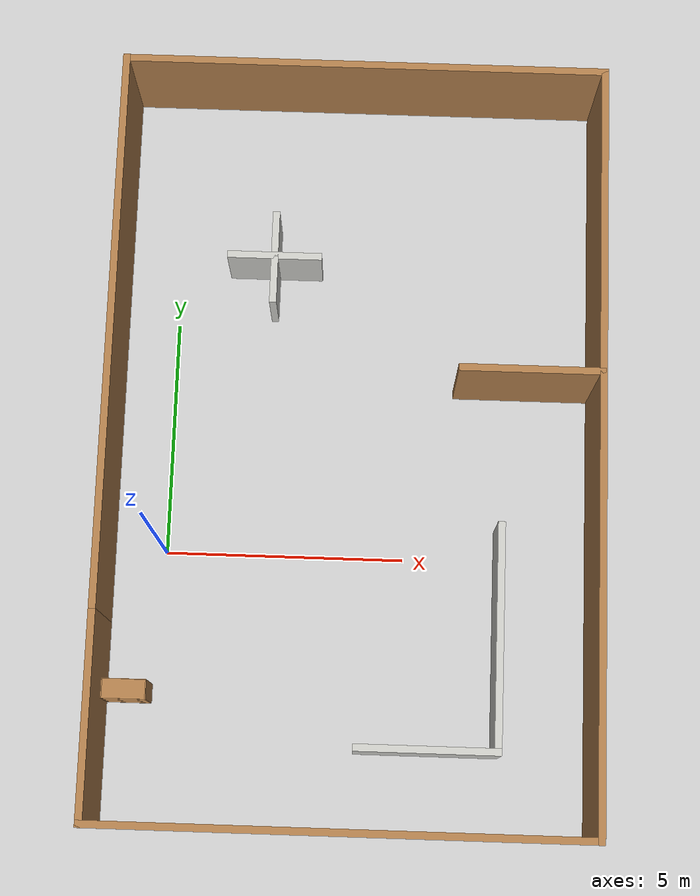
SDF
<sdf version="1.6">
 <world name="default">
  <light name="sun" type="directional">
   <pose>0 0 10 0 -0 0</pose>
   <diffuse>0.8 0.8 0.8 1</diffuse>
   <specular>0.1 0.1 0.1 1</specular>
   <attenuation>
    <range>1000</range>
    <constant>0.9</constant>
    <linear>0.01</linear>
    <quadratic>0.001</quadratic>
   </attenuation>
   <direction>-0.5 0.5 -1</direction>
  </light>
  <model name="ground_plane">
   <static>1</static>
   <link name="link">
    <collision name="collision">
     <geometry><plane><normal>0 0 1</normal><size>100 100</size></plane></geometry>
     <surface><friction><ode><mu>100</mu><mu2>50</mu2></ode></friction></surface>
    </collision>
    <visual name="visual">
     <cast_shadows>0</cast_shadows>
     <geometry><plane><normal>0 0 1</normal><size>100 100</size></plane></geometry>
     <material>
      <script><uri>file://media/materials/scripts/gazebo.material</uri><name>Gazebo/Grey</name></script>
     </material>
    </visual>
   </link>
  </model>
  <gravity>0 0 -9.8</gravity>
  <magnetic_field>6e-06 2.3e-05 -4.2e-05</magnetic_field>
  <atmosphere type="adiabatic"/>
  <physics name="default_physics" default="0" type="ode">
   <max_step_size>0.001</max_step_size>
   <real_time_factor>1</real_time_factor>
   <real_time_update_rate>1000</real_time_update_rate>
  </physics>
  <scene><ambient>0.4 0.4 0.4 1</ambient><background>0.7 0.7 0.7 1</background><shadows>1</shadows></scene>
  <spherical_coordinates>
   <surface_model>EARTH_WGS84</surface_model>
   <latitude_deg>0</latitude_deg>
   <longitude_deg>0</longitude_deg>
   <elevation>0</elevation>
   <heading_deg>0</heading_deg>
  </spherical_coordinates>
  <model name="irl_test5">
   <pose>3.88601 2.23861 0 0 -0 0</pose>
   <link name="Wall_12">
    <collision name="Wall_12_Collision">
     <geometry><box><size>11.75 0.15 2.5</size></box></geometry>
     <pose>0 0 1.25 0 -0 0</pose>
    </collision>
    <visual name="Wall_12_Visual">
     <pose>0 0 1.25 0 -0 0</pose>
     <geometry><box><size>11.75 0.15 2.5</size></box></geometry>
     <material>
      <script><uri>file://media/materials/scripts/gazebo.material</uri><name>Gazebo/Wood</name></script>
      <ambient>1 1 1 1</ambient>
     </material>
    </visual>
    <pose>-5.05 2.125 0 0 -0 1.5708</pose>
   </link>
   <link name="Wall_13">
    <collision name="Wall_13_Collision">
     <geometry><box><size>10.25 0.15 2.5</size></box></geometry>
     <pose>0 0 1.25 0 -0 0</pose>
    </collision>
    <visual name="Wall_13_Visual">
     <pose>0 0 1.25 0 -0 0</pose>
     <geometry><box><size>10.25 0.15 2.5</size></box></geometry>
     <material>
      <script><uri>file://media/materials/scripts/gazebo.material</uri><name>Gazebo/Wood</name></script>
      <ambient>1 1 1 1</ambient>
     </material>
    </visual>
    <pose>0 7.925 0 0 -0 0</pose>
   </link>
   <link name="Wall_14">
    <collision name="Wall_14_Collision">
     <geometry><box><size>16 0.15 2.5</size></box></geometry>
     <pose>0 0 1.25 0 -0 0</pose>
    </collision>
    <visual name="Wall_14_Visual">
     <pose>0 0 1.25 0 -0 0</pose>
     <geometry><box><size>16 0.15 2.5</size></box></geometry>
     <material>
      <script><uri>file://media/materials/scripts/gazebo.material</uri><name>Gazebo/Wood</name></script>
      <ambient>1 1 1 1</ambient>
     </material>
    </visual>
    <pose>5.05 0 0 0 0 -1.5708</pose>
   </link>
   <link name="Wall_15">
    <collision name="Wall_15_Collision">
     <geometry><box><size>10.25 0.15 2.5</size></box></geometry>
     <pose>0 0 1.25 0 -0 0</pose>
    </collision>
    <visual name="Wall_15_Visual">
     <pose>0 0 1.25 0 -0 0</pose>
     <geometry><box><size>10.25 0.15 2.5</size></box></geometry>
     <material>
      <script><uri>file://media/materials/scripts/gazebo.material</uri><name>Gazebo/Wood</name></script>
      <ambient>1 1 1 1</ambient>
     </material>
    </visual>
    <pose>0 -7.925 0 0 -0 3.14159</pose>
   </link>
   <link name="Wall_16">
    <collision name="Wall_16_Collision">
     <geometry><box><size>4.25 0.15 2.5</size></box></geometry>
     <pose>0 0 1.25 0 -0 0</pose>
    </collision>
    <visual name="Wall_16_Visual">
     <pose>0 0 1.25 0 -0 0</pose>
     <geometry><box><size>4.25 0.15 2.5</size></box></geometry>
     <material>
      <script><uri>file://media/materials/scripts/gazebo.material</uri><name>Gazebo/Wood</name></script>
      <ambient>1 1 1 1</ambient>
     </material>
    </visual>
    <pose>-5.05 -5.875 0 0 -0 1.5708</pose>
   </link>
   <link name="Wall_18">
    <collision name="Wall_18_Collision">
     <geometry><box><size>2 0.15 1.5</size></box></geometry>
     <pose>0 0 0.75 0 -0 0</pose>
    </collision>
    <visual name="Wall_18_Visual">
     <pose>0 0 0.75 0 -0 0</pose>
     <geometry><box><size>2 0.15 1.5</size></box></geometry>
     <material>
      <script><uri>file://media/materials/scripts/gazebo.material</uri><name>Gazebo/CeilingTiled</name></script>
      <ambient>0.921569 0.807843 0.615686 1</ambient>
     </material>
    </visual>
    <pose>-1.80401 3.98339 0 0 -0 0</pose>
   </link>
   <link name="Wall_20">
    <collision name="Wall_20_Collision">
     <geometry><box><size>2 0.15 1.5</size></box></geometry>
     <pose>0 0 0.75 0 -0 0</pose>
    </collision>
    <visual name="Wall_20_Visual">
     <pose>0 0 0.75 0 -0 0</pose>
     <geometry><box><size>2 0.15 1.5</size></box></geometry>
     <material>
      <script><uri>file://media/materials/scripts/gazebo.material</uri><name>Gazebo/CeilingTiled</name></script>
      <ambient>0.921569 0.807843 0.615686 1</ambient>
     </material>
    </visual>
    <pose>-1.8014 3.95535 0 0 0 -1.5708</pose>
   </link>
   <link name="Wall_22">
    <collision name="Wall_22_Collision">
     <geometry><box><size>3 0.15 1.5</size></box></geometry>
     <pose>0 0 0.75 0 -0 0</pose>
    </collision>
    <visual name="Wall_22_Visual">
     <pose>0 0 0.75 0 -0 0</pose>
     <geometry><box><size>3 0.15 1.5</size></box></geometry>
     <material>
      <script><uri>file://media/materials/scripts/gazebo.material</uri><name>Gazebo/CeilingTiled</name></script>
      <ambient>0.996078 0.47451 0.0196078 1</ambient>
     </material>
    </visual>
    <pose>1.67999 -6.24561 0 0 -0 0</pose>
   </link>
   <link name="Wall_23">
    <collision name="Wall_23_Collision">
     <geometry><box><size>4.75 0.15 1.5</size></box></geometry>
     <pose>0 0 0.75 0 -0 0</pose>
    </collision>
    <visual name="Wall_23_Visual">
     <pose>0 0 0.75 0 -0 0</pose>
     <geometry><box><size>4.75 0.15 1.5</size></box></geometry>
     <material>
      <script><uri>file://media/materials/scripts/gazebo.material</uri><name>Gazebo/CeilingTiled</name></script>
      <ambient>0.996078 0.47451 0.0196078 1</ambient>
     </material>
    </visual>
    <pose>3.10499 -3.94561 0 0 -0 1.5708</pose>
   </link>
   <link name="Wall_25">
    <collision name="Wall_25_Collision">
     <geometry><box><size>3 0.15 2.5</size></box></geometry>
     <pose>0 0 1.25 0 -0 0</pose>
    </collision>
    <visual name="Wall_25_Visual">
     <pose>0 0 1.25 0 -0 0</pose>
     <geometry><box><size>3 0.15 2.5</size></box></geometry>
     <material>
      <script><uri>file://media/materials/scripts/gazebo.material</uri><name>Gazebo/Wood</name></script>
      <ambient>1 1 1 1</ambient>
     </material>
    </visual>
    <pose>3.5999 1.41476 0 0 -0 3.14159</pose>
   </link>
   <static>1</static>
  </model>
  <model name="bookshelf">
   <static>1</static>
   <link name="link">
    <inertial><mass>1</mass></inertial>
    <collision name="back">
     <pose>0 0.005 0.6 0 -0 0</pose>
     <geometry><box><size>0.9 0.01 1.2</size></box></geometry>
    </collision>
    <visual name="visual1">
     <pose>0 0.005 0.6 0 -0 0</pose>
     <geometry><box><size>0.9 0.01 1.2</size></box></geometry>
     <material>
      <script><uri>file://media/materials/scripts/gazebo.material</uri><name>Gazebo/Wood</name></script>
     </material>
    </visual>
    <collision name="left_side">
     <pose>0.45 -0.195 0.6 0 -0 0</pose>
     <geometry><box><size>0.02 0.4 1.2</size></box></geometry>
    </collision>
    <visual name="visual2">
     <pose>0.45 -0.195 0.6 0 -0 0</pose>
     <geometry><box><size>0.02 0.4 1.2</size></box></geometry>
     <material>
      <script><uri>file://media/materials/scripts/gazebo.material</uri><name>Gazebo/Wood</name></script>
     </material>
    </visual>
    <collision name="right_side">
     <pose>-0.45 -0.195 0.6 0 -0 0</pose>
     <geometry><box><size>0.02 0.4 1.2</size></box></geometry>
    </collision>
    <visual name="visual3">
     <pose>-0.45 -0.195 0.6 0 -0 0</pose>
     <geometry><box><size>0.02 0.4 1.2</size></box></geometry>
     <material>
      <script><uri>file://media/materials/scripts/gazebo.material</uri><name>Gazebo/Wood</name></script>
     </material>
    </visual>
    <collision name="bottom">
     <pose>0 -0.195 0.03 0 -0 0</pose>
     <geometry><box><size>0.88 0.4 0.06</size></box></geometry>
    </collision>
    <visual name="visual4">
     <pose>0 -0.195 0.03 0 -0 0</pose>
     <geometry><box><size>0.88 0.4 0.06</size></box></geometry>
     <material>
      <script><uri>file://media/materials/scripts/gazebo.material</uri><name>Gazebo/Wood</name></script>
     </material>
    </visual>
    <collision name="top">
     <pose>0 -0.195 1.19 0 -0 0</pose>
     <geometry><box><size>0.88 0.4 0.02</size></box></geometry>
    </collision>
    <visual name="visual5">
     <pose>0 -0.195 1.19 0 -0 0</pose>
     <geometry><box><size>0.88 0.4 0.02</size></box></geometry>
     <material>
      <script><uri>file://media/materials/scripts/gazebo.material</uri><name>Gazebo/Wood</name></script>
     </material>
    </visual>
    <collision name="low_shelf">
     <pose>0 -0.195 0.43 0 -0 0</pose>
     <geometry><box><size>0.88 0.4 0.02</size></box></geometry>
    </collision>
    <visual name="visual6">
     <pose>0 -0.195 0.43 0 -0 0</pose>
     <geometry><box><size>0.88 0.4 0.02</size></box></geometry>
     <material>
      <script><uri>file://media/materials/scripts/gazebo.material</uri><name>Gazebo/Wood</name></script>
     </material>
    </visual>
    <collision name="high_shelf">
     <pose>0 -0.195 0.8 0 -0 0</pose>
     <geometry><box><size>0.88 0.4 0.02</size></box></geometry>
    </collision>
    <visual name="visual7">
     <pose>0 -0.195 0.8 0 -0 0</pose>
     <geometry><box><size>0.88 0.4 0.02</size></box></geometry>
     <material>
      <script><uri>file://media/materials/scripts/gazebo.material</uri><name>Gazebo/Wood</name></script>
     </material>
    </visual>
   </link>
   <pose>-0.61397 -2.7792 0 0 -0 0</pose>
  </model>
  <model name="human_1_collision_model">
   <pose>0.915583 8.98582 1.02247 1.5626 0.023368 -1.45123</pose>
   <static>1</static>
   <link name="link">
    <collision name="link">
     <pose>0 -0.18 0.05 3.14159 -1.57079 3.14159</pose>
     <geometry><box><size>0.44 1.62 0.6</size></box></geometry>
    </collision>
   </link>
  </model>
  <model name="human_2_collision_model">
   <pose>-0.034649 -4.01269 1.03527 1.52501 -0.068522 -2.37324</pose>
   <static>1</static>
   <link name="link">
    <collision name="link">
     <pose>0 -0.18 0.05 3.14159 -1.57079 3.14159</pose>
     <geometry><box><size>0.44 1.62 0.6</size></box></geometry>
    </collision>
   </link>
  </model>
  <model name="human_3_collision_model">
   <pose>2.15473 -3.41633 1.01465 1.57616 -0.094557 0.688915</pose>
   <static>1</static>
   <link name="link">
    <collision name="link">
     <pose>0 -0.18 0.05 3.14159 -1.57079 3.14159</pose>
     <geometry><box><size>0.44 1.62 0.6</size></box></geometry>
    </collision>
   </link>
  </model>
  <model name="human_4_collision_model">
   <pose>4 0.018913 1.02909 1.55026 -0.008555 1.48586</pose>
   <static>1</static>
   <link name="link">
    <collision name="link">
     <pose>0 -0.18 0.05 3.14159 -1.57079 3.14159</pose>
     <geometry><box><size>0.44 1.62 0.6</size></box></geometry>
    </collision>
   </link>
  </model>
  <model name="human_5_collision_model">
   <pose>1.98109 3 1.02909 1.55026 -0.008555 3.05666</pose>
   <static>1</static>
   <link name="link">
    <collision name="link">
     <pose>0 -0.18 0.05 3.14159 -1.57079 3.14159</pose>
     <geometry><box><size>0.44 1.62 0.6</size></box></geometry>
    </collision>
   </link>
  </model>
 </world>
</sdf>
